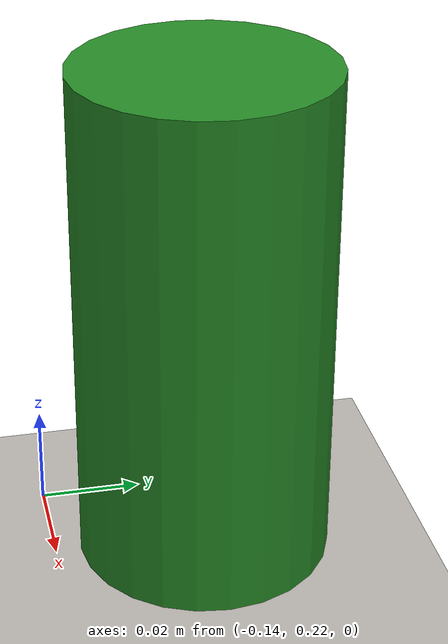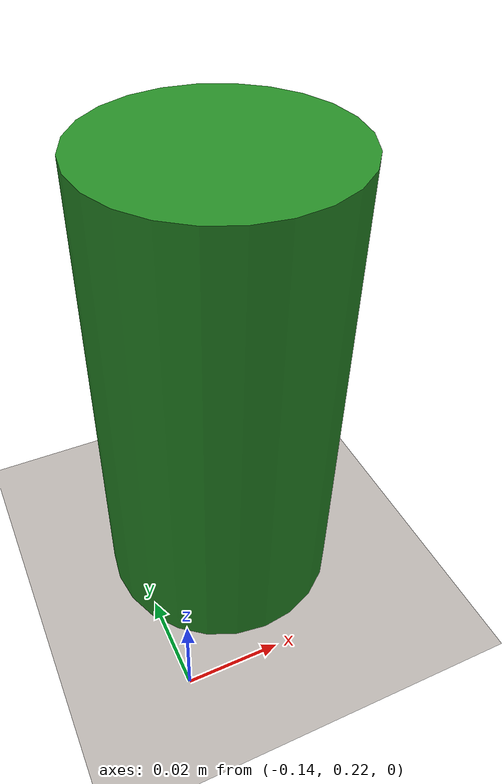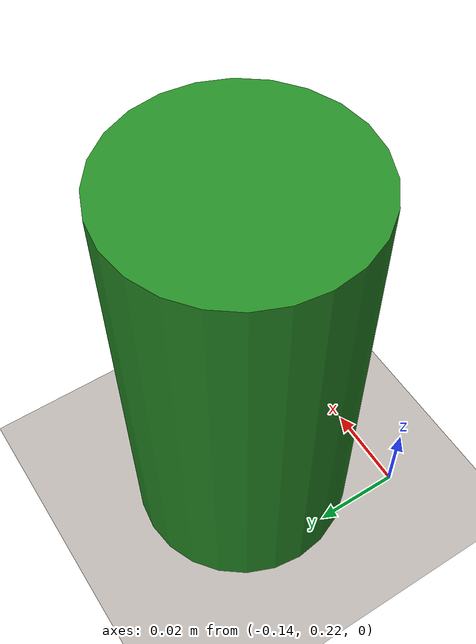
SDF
<sdf version="1.6">
  <world name="vision_test">

    <physics name="fast" type="dart">
      <max_step_size>0.005</max_step_size>
      <real_time_factor>1.0</real_time_factor>
      <dart>
        <solver>
          <solver_type>pgs</solver_type>
        </solver>
        <collision_detector>ode</collision_detector>
      </dart>
    </physics>
    <plugin filename="gz-sim-physics-system" name="gz::sim::systems::Physics"/>
    <plugin filename="gz-sim-user-commands-system" name="gz::sim::systems::UserCommands"/>
    <plugin filename="gz-sim-scene-broadcaster-system" name="gz::sim::systems::SceneBroadcaster"/>
    <plugin filename="gz-sim-contact-system" name="gz::sim::systems::Contact"/>
    <plugin filename="gz-sim-sensors-system" name="gz::sim::systems::Sensors">
      <render_engine>ogre2</render_engine>
    </plugin>

    <light type="directional" name="sun">
      <cast_shadows>false</cast_shadows>
      <pose>0 0 10 0 0 0</pose>
      <diffuse>0.8 0.8 0.8 1</diffuse>
      <specular>0.2 0.2 0.2 1</specular>
      <attenuation>
        <range>1000</range>
        <constant>0.9</constant>
        <linear>0.01</linear>
        <quadratic>0.001</quadratic>
      </attenuation>
      <direction>-0.5 0.1 -0.9</direction>
    </light>

    <gravity>0 0 -9.8</gravity>
    <atmosphere type="adiabatic"/>

    <scene>
      <ambient>0.4 0.4 0.4 1</ambient>
      <background>0.7 0.8 1.0 1</background>
      <grid>false</grid>
    </scene>

    <!-- Concrete-grey ground plane (matches reach_vision floor colour
         FLOOR_COLOR=(0.72, 0.70, 0.68) in reach_vision_env_cfg.py). -->
    <model name="ground_plane">
      <static>true</static>
      <link name="link">
        <collision name="collision">
          <geometry>
            <plane>
              <normal>0 0 1</normal>
              <size>3 3</size>
            </plane>
          </geometry>
          <surface>
            <friction><ode><mu>50</mu></ode></friction>
          </surface>
        </collision>
        <visual name="visual">
          <geometry>
            <plane>
              <normal>0 0 1</normal>
              <size>3 3</size>
            </plane>
          </geometry>
          <material>
            <ambient>0.72 0.70 0.68 1</ambient>
            <diffuse>0.72 0.70 0.68 1</diffuse>
            <specular>0.1 0.1 0.1 1</specular>
          </material>
        </visual>
      </link>
    </model>

    <model name="green_cylinder">
      <static>true</static>
      <pose>-0.12 0.25 0.05 0 0 0</pose>
      <link name="link">
        <visual name="visual">
          <geometry>
            <cylinder>
              <radius>0.025</radius>
              <length>0.10</length>
            </cylinder>
          </geometry>
          <material>
            <ambient>0.10 0.40 0.10 1</ambient>
            <diffuse>0.15 0.55 0.15 1</diffuse>
            <specular>0.05 0.10 0.05 1</specular>
          </material>
        </visual>
      </link>
    </model>

  </world>
</sdf>
